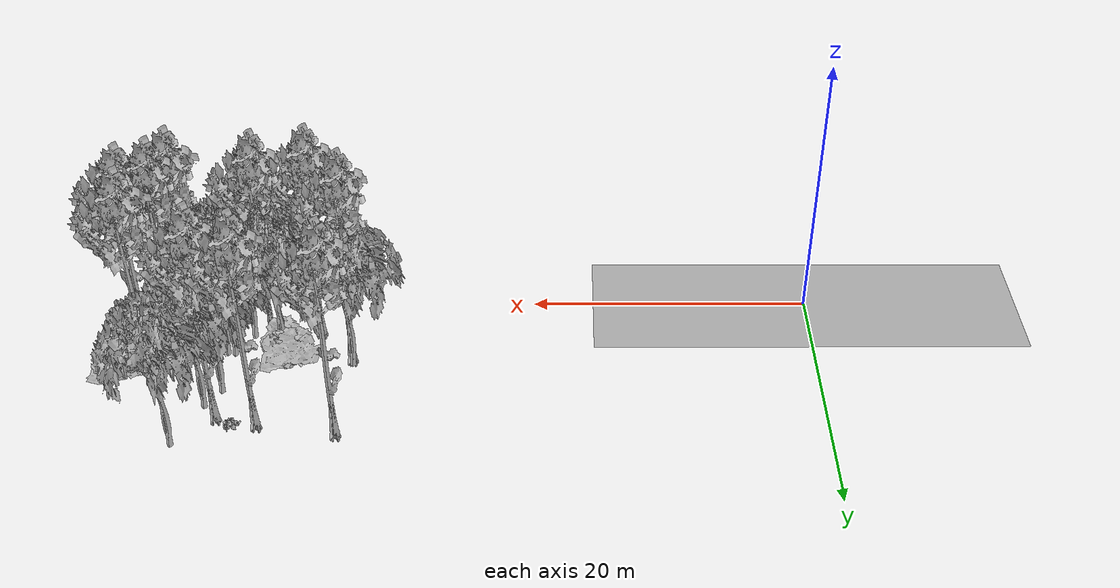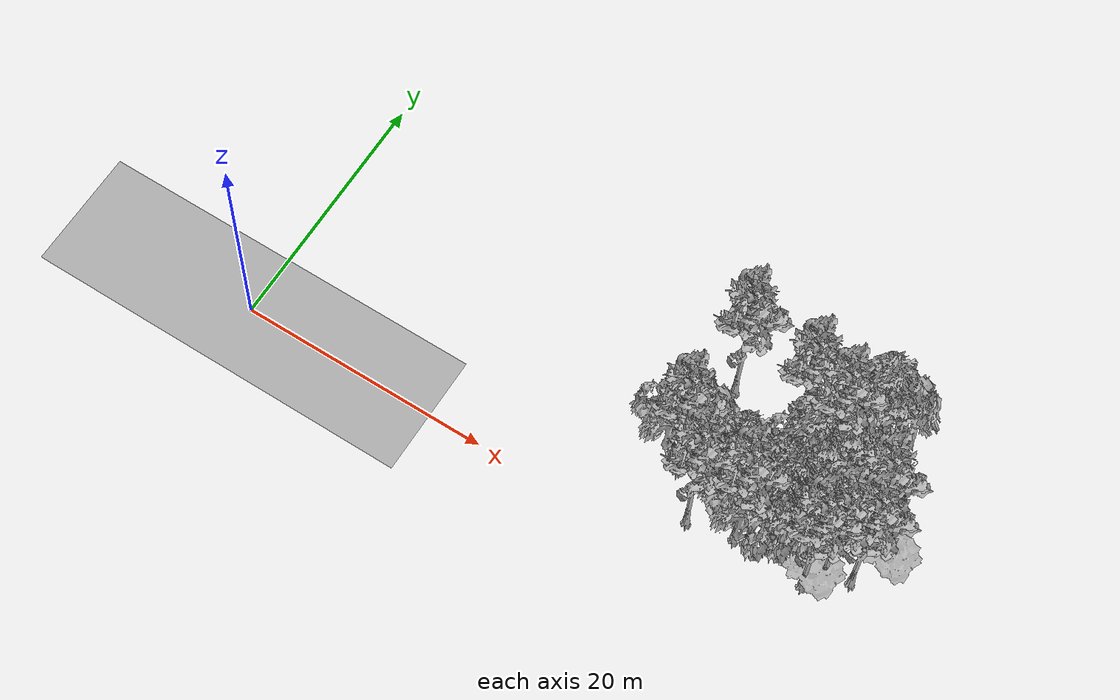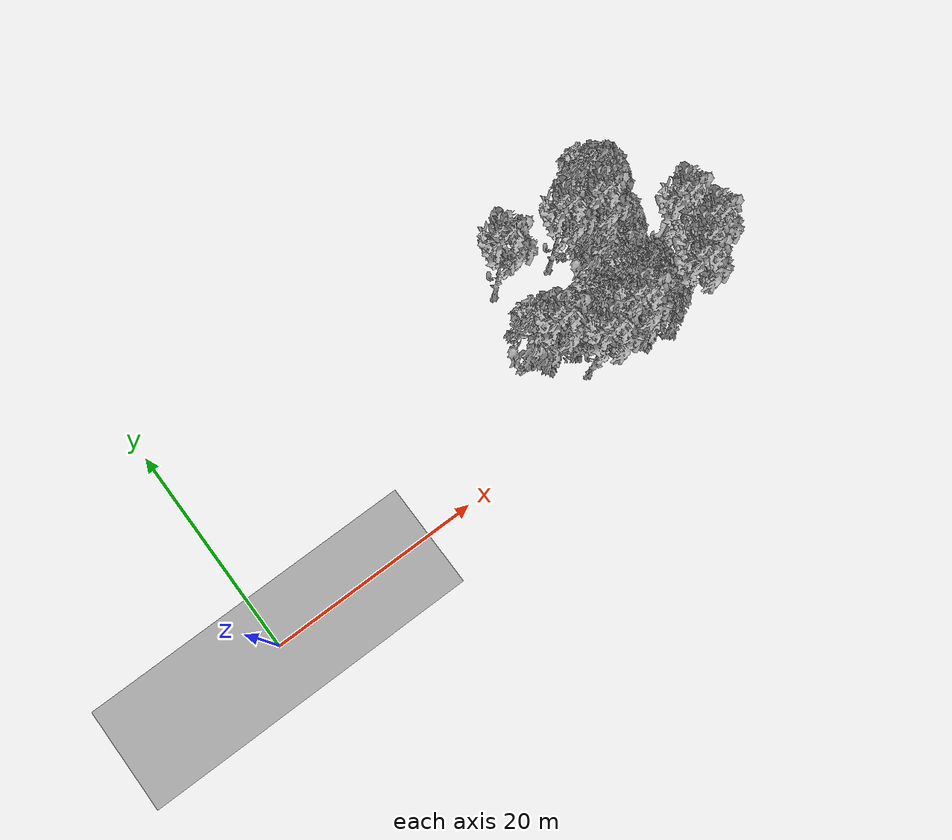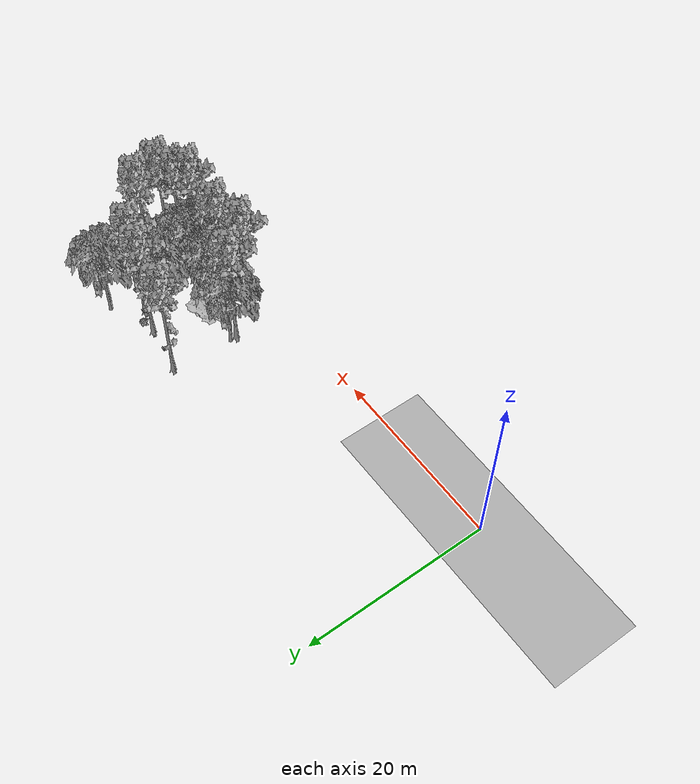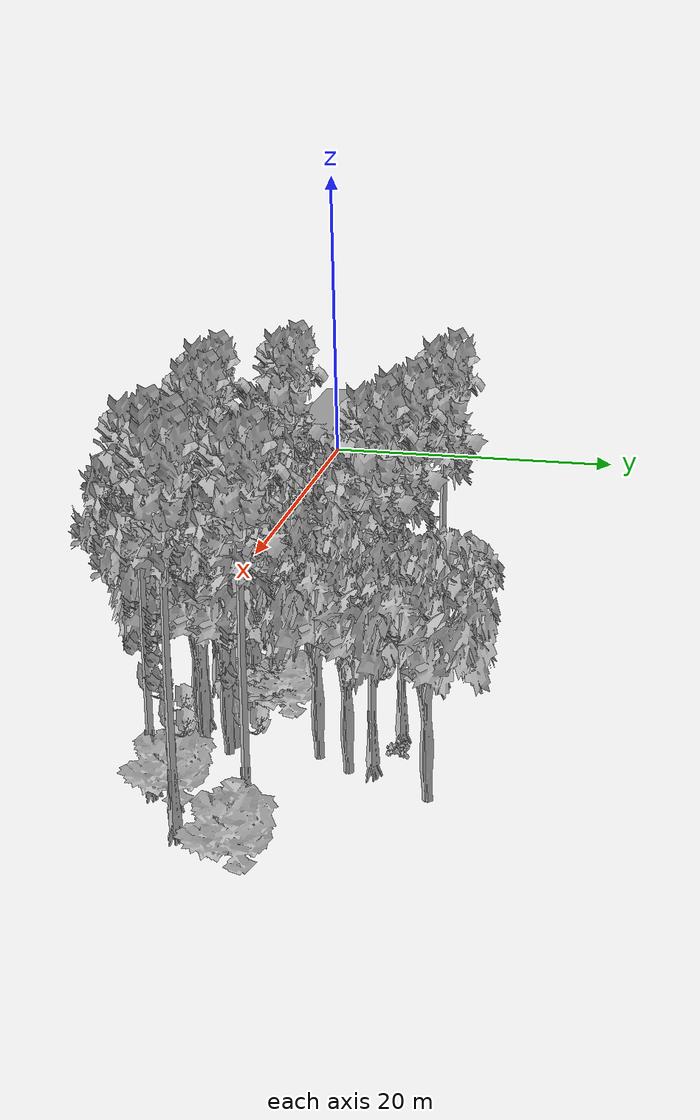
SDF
<sdf version="1.7">
 <world name="default">
  <model name="ground_plane">
   <static>1</static>
   <link name="link">
    <collision name="collision">
     <pose>-50 0 0 0 -0 0</pose>
     <geometry><plane><normal>0 0 1</normal><size>100 100</size></plane></geometry>
     <surface><contact><ode><min_depth>0.01</min_depth><max_vel>0</max_vel></ode></contact></surface>
    </collision>
    <visual name="grass">
     <cast_shadows>0</cast_shadows>
     <geometry>
      <mesh>
       <scale>0.5814285714285714 0.18142857142857144 0.1</scale>
       <uri>file://grass_plane/meshes/grass_plane.dae</uri>
      </mesh>
     </geometry>
    </visual>
   </link>
  </model>
  <model name="Tree 7">
   <static>1</static>
   <pose>32.626736629111505 6.783906813171935 0 1.57079 -0 0</pose>
   <link name="link">
    <collision name="collision">
     <geometry><mesh><scale>3.5 5 3.5</scale><uri>model://tree_2/meshes/tree_2.obj</uri></mesh></geometry>
    </collision>
    <visual name="visual">
     <geometry><mesh><scale>3.5 5 3.5</scale><uri>model://tree_2/meshes/tree_2.obj</uri></mesh></geometry>
    </visual>
   </link>
  </model>
  <model name="Tree 12">
   <static>1</static>
   <pose>45.61058705122035 4.524592553378415 0 1.57079 -0 0</pose>
   <link name="link">
    <collision name="collision">
     <geometry><mesh><scale>3.5 5 3.5</scale><uri>model://tree_9/meshes/tree_9.obj</uri></mesh></geometry>
    </collision>
    <visual name="visual">
     <geometry><mesh><scale>3.5 5 3.5</scale><uri>model://tree_9/meshes/tree_9.obj</uri></mesh></geometry>
    </visual>
   </link>
  </model>
  <model name="Tree 16">
   <static>1</static>
   <pose>33.20872274278052 13.63194868836116 0 1.57079 -0 0</pose>
   <link name="link">
    <collision name="collision">
     <geometry><mesh><scale>3.5 5 3.5</scale><uri>model://tree_9/meshes/tree_9.obj</uri></mesh></geometry>
    </collision>
    <visual name="visual">
     <geometry><mesh><scale>3.5 5 3.5</scale><uri>model://tree_9/meshes/tree_9.obj</uri></mesh></geometry>
    </visual>
   </link>
  </model>
  <model name="Tree 27">
   <static>1</static>
   <pose>43.822798079690656 14.884227019418699 0 1.57079 -0 0</pose>
   <link name="link">
    <collision name="collision">
     <geometry><mesh><scale>3.5 5 3.5</scale><uri>model://tree_2/meshes/tree_2.obj</uri></mesh></geometry>
    </collision>
    <visual name="visual">
     <geometry><mesh><scale>3.5 5 3.5</scale><uri>model://tree_2/meshes/tree_2.obj</uri></mesh></geometry>
    </visual>
   </link>
  </model>
  <model name="Tree 28">
   <static>1</static>
   <pose>42.28532530113175 11.158036692358234 0 1.57079 -0 0</pose>
   <link name="link">
    <collision name="collision">
     <geometry><mesh><scale>3.5 5 3.5</scale><uri>model://tree_2/meshes/tree_2.obj</uri></mesh></geometry>
    </collision>
    <visual name="visual">
     <geometry><mesh><scale>3.5 5 3.5</scale><uri>model://tree_2/meshes/tree_2.obj</uri></mesh></geometry>
    </visual>
   </link>
  </model>
  <model name="Tree 51">
   <static>1</static>
   <pose>44.81736346963602 4.0250606593404115 0 1.57079 -0 0</pose>
   <link name="link">
    <collision name="collision">
     <geometry><mesh><scale>3 2 3</scale><uri>model://tree_3/meshes/tree_3.obj</uri></mesh></geometry>
    </collision>
    <visual name="visual">
     <geometry><mesh><scale>3 2 3</scale><uri>model://tree_3/meshes/tree_3.obj</uri></mesh></geometry>
    </visual>
   </link>
  </model>
  <model name="Tree 76">
   <static>1</static>
   <pose>41.34086045519993 9.61837757302537 0 1.57079 -0 0</pose>
   <link name="link">
    <collision name="collision">
     <geometry><mesh><scale>3.5 5 3.5</scale><uri>model://tree_2/meshes/tree_2.obj</uri></mesh></geometry>
    </collision>
    <visual name="visual">
     <geometry><mesh><scale>3.5 5 3.5</scale><uri>model://tree_2/meshes/tree_2.obj</uri></mesh></geometry>
    </visual>
   </link>
  </model>
  <model name="Tree 83">
   <static>1</static>
   <pose>44.65660981973018 3.218141402687337 0 1.57079 -0 0</pose>
   <link name="link">
    <collision name="collision">
     <geometry><mesh><scale>3.5 5 3.5</scale><uri>model://tree_9/meshes/tree_9.obj</uri></mesh></geometry>
    </collision>
    <visual name="visual">
     <geometry><mesh><scale>3.5 5 3.5</scale><uri>model://tree_9/meshes/tree_9.obj</uri></mesh></geometry>
    </visual>
   </link>
  </model>
  <model name="Tree 86">
   <static>1</static>
   <pose>41.45513734192926 4.461939979537256 0 1.57079 -0 0</pose>
   <link name="link">
    <collision name="collision">
     <geometry><mesh><scale>3.5 5 3.5</scale><uri>model://tree_2/meshes/tree_2.obj</uri></mesh></geometry>
    </collision>
    <visual name="visual">
     <geometry><mesh><scale>3.5 5 3.5</scale><uri>model://tree_2/meshes/tree_2.obj</uri></mesh></geometry>
    </visual>
   </link>
  </model>
  <model name="Tree 116">
   <static>1</static>
   <pose>32.89409203664056 5.975019958026699 0 1.57079 -0 0</pose>
   <link name="link">
    <collision name="collision">
     <geometry><mesh><scale>3.5 5 3.5</scale><uri>model://tree_9/meshes/tree_9.obj</uri></mesh></geometry>
    </collision>
    <visual name="visual">
     <geometry><mesh><scale>3.5 5 3.5</scale><uri>model://tree_9/meshes/tree_9.obj</uri></mesh></geometry>
    </visual>
   </link>
  </model>
  <model name="Tree 120">
   <static>1</static>
   <pose>37.129016036928775 6.662931346857324 0 1.57079 -0 0</pose>
   <link name="link">
    <collision name="collision">
     <geometry><mesh><scale>3 2 3</scale><uri>model://tree_3/meshes/tree_3.obj</uri></mesh></geometry>
    </collision>
    <visual name="visual">
     <geometry><mesh><scale>3 2 3</scale><uri>model://tree_3/meshes/tree_3.obj</uri></mesh></geometry>
    </visual>
   </link>
  </model>
  <model name="Tree 131">
   <static>1</static>
   <pose>41.11742294136761 5.6941707097569925 0 1.57079 -0 0</pose>
   <link name="link">
    <collision name="collision">
     <geometry><mesh><scale>3.5 5 3.5</scale><uri>model://tree_2/meshes/tree_2.obj</uri></mesh></geometry>
    </collision>
    <visual name="visual">
     <geometry><mesh><scale>3.5 5 3.5</scale><uri>model://tree_2/meshes/tree_2.obj</uri></mesh></geometry>
    </visual>
   </link>
  </model>
  <model name="Tree 136">
   <static>1</static>
   <pose>35.465598128593555 2.956987702376118 0 1.57079 -0 0</pose>
   <link name="link">
    <collision name="collision">
     <geometry><mesh><scale>3.5 5 3.5</scale><uri>model://tree_9/meshes/tree_9.obj</uri></mesh></geometry>
    </collision>
    <visual name="visual">
     <geometry><mesh><scale>3.5 5 3.5</scale><uri>model://tree_9/meshes/tree_9.obj</uri></mesh></geometry>
    </visual>
   </link>
  </model>
  <model name="Tree 140">
   <static>1</static>
   <pose>41.65892397758954 5.60788370954975 0 1.57079 -0 0</pose>
   <link name="link">
    <collision name="collision">
     <geometry><mesh><scale>3.5 5 3.5</scale><uri>model://tree_2/meshes/tree_2.obj</uri></mesh></geometry>
    </collision>
    <visual name="visual">
     <geometry><mesh><scale>3.5 5 3.5</scale><uri>model://tree_2/meshes/tree_2.obj</uri></mesh></geometry>
    </visual>
   </link>
  </model>
  <model name="Tree 146">
   <static>1</static>
   <pose>41.51764368860593 12.053786229555602 0 1.57079 -0 0</pose>
   <link name="link">
    <collision name="collision">
     <geometry><mesh><scale>3.5 5 3.5</scale><uri>model://tree_9/meshes/tree_9.obj</uri></mesh></geometry>
    </collision>
    <visual name="visual">
     <geometry><mesh><scale>3.5 5 3.5</scale><uri>model://tree_9/meshes/tree_9.obj</uri></mesh></geometry>
    </visual>
   </link>
  </model>
  <model name="Tree 156">
   <static>1</static>
   <pose>38.66284518212204 12.76426097532584 0 1.57079 -0 0</pose>
   <link name="link">
    <collision name="collision">
     <geometry><mesh><scale>3.5 5 3.5</scale><uri>model://tree_9/meshes/tree_9.obj</uri></mesh></geometry>
    </collision>
    <visual name="visual">
     <geometry><mesh><scale>3.5 5 3.5</scale><uri>model://tree_9/meshes/tree_9.obj</uri></mesh></geometry>
    </visual>
   </link>
  </model>
  <model name="Tree 194">
   <static>1</static>
   <pose>40.05171712692422 3.7175350347755334 0 1.57079 -0 0</pose>
   <link name="link">
    <collision name="collision">
     <geometry><mesh><scale>3.5 5 3.5</scale><uri>model://tree_2/meshes/tree_2.obj</uri></mesh></geometry>
    </collision>
    <visual name="visual">
     <geometry><mesh><scale>3.5 5 3.5</scale><uri>model://tree_2/meshes/tree_2.obj</uri></mesh></geometry>
    </visual>
   </link>
  </model>
  <model name="Tree 202">
   <static>1</static>
   <pose>46.76501623392656 8.082800734247996 0 1.57079 -0 0</pose>
   <link name="link">
    <collision name="collision">
     <geometry><mesh><scale>3.5 5 3.5</scale><uri>model://tree_9/meshes/tree_9.obj</uri></mesh></geometry>
    </collision>
    <visual name="visual">
     <geometry><mesh><scale>3.5 5 3.5</scale><uri>model://tree_9/meshes/tree_9.obj</uri></mesh></geometry>
    </visual>
   </link>
  </model>
  <model name="Tree 218">
   <static>1</static>
   <pose>38.92863916785342 3.6252630683010523 0 1.57079 -0 0</pose>
   <link name="link">
    <collision name="collision">
     <geometry><mesh><scale>3.5 5 3.5</scale><uri>model://tree_9/meshes/tree_9.obj</uri></mesh></geometry>
    </collision>
    <visual name="visual">
     <geometry><mesh><scale>3.5 5 3.5</scale><uri>model://tree_9/meshes/tree_9.obj</uri></mesh></geometry>
    </visual>
   </link>
  </model>
  <model name="Tree 241">
   <static>1</static>
   <pose>48.68361025062991 7.90347933798067 0 1.57079 -0 0</pose>
   <link name="link">
    <collision name="collision">
     <geometry><mesh><scale>3 2 3</scale><uri>model://tree_3/meshes/tree_3.obj</uri></mesh></geometry>
    </collision>
    <visual name="visual">
     <geometry><mesh><scale>3 2 3</scale><uri>model://tree_3/meshes/tree_3.obj</uri></mesh></geometry>
    </visual>
   </link>
  </model>
  <model name="Tree 261">
   <static>1</static>
   <pose>47.43630284566389 5.256620121651949 0 1.57079 -0 0</pose>
   <link name="link">
    <collision name="collision">
     <geometry><mesh><scale>3.5 5 3.5</scale><uri>model://tree_9/meshes/tree_9.obj</uri></mesh></geometry>
    </collision>
    <visual name="visual">
     <geometry><mesh><scale>3.5 5 3.5</scale><uri>model://tree_9/meshes/tree_9.obj</uri></mesh></geometry>
    </visual>
   </link>
  </model>
  <model name="Tree 274">
   <static>1</static>
   <pose>37.698413036071585 5.660507943646785 0 1.57079 -0 0</pose>
   <link name="link">
    <collision name="collision">
     <geometry><mesh><scale>3.5 5 3.5</scale><uri>model://tree_2/meshes/tree_2.obj</uri></mesh></geometry>
    </collision>
    <visual name="visual">
     <geometry><mesh><scale>3.5 5 3.5</scale><uri>model://tree_2/meshes/tree_2.obj</uri></mesh></geometry>
    </visual>
   </link>
  </model>
  <model name="Tree 284">
   <static>1</static>
   <pose>37.37755834449594 5.761462130629674 0 1.57079 -0 0</pose>
   <link name="link">
    <collision name="collision">
     <geometry><mesh><scale>4 2.5 4</scale><uri>model://tree_1/meshes/tree_1.obj</uri></mesh></geometry>
    </collision>
    <visual name="visual">
     <geometry><mesh><scale>4 2.5 4</scale><uri>model://tree_1/meshes/tree_1.obj</uri></mesh></geometry>
    </visual>
   </link>
  </model>
  <model name="Tree 296">
   <static>1</static>
   <pose>37.7857753034462 5.210542725378211 0 1.57079 -0 0</pose>
   <link name="link">
    <collision name="collision">
     <geometry><mesh><scale>3.5 5 3.5</scale><uri>model://tree_2/meshes/tree_2.obj</uri></mesh></geometry>
    </collision>
    <visual name="visual">
     <geometry><mesh><scale>3.5 5 3.5</scale><uri>model://tree_2/meshes/tree_2.obj</uri></mesh></geometry>
    </visual>
   </link>
  </model>
  <model name="Bush 2">
   <static>1</static>
   <pose>40.23561760230996 12.916430013251038 0 1.57079 -0 0</pose>
   <link name="link">
    <collision name="collision">
     <geometry><mesh><scale>2 2 2</scale><uri>model://bush_2/meshes/bush_2.obj</uri></mesh></geometry>
     <surface><contact><collide_without_contact>false</collide_without_contact></contact></surface>
    </collision>
    <visual name="visual">
     <geometry><mesh><scale>2 2 2</scale><uri>model://bush_2/meshes/bush_2.obj</uri></mesh></geometry>
    </visual>
   </link>
  </model>
 </world>
</sdf>
